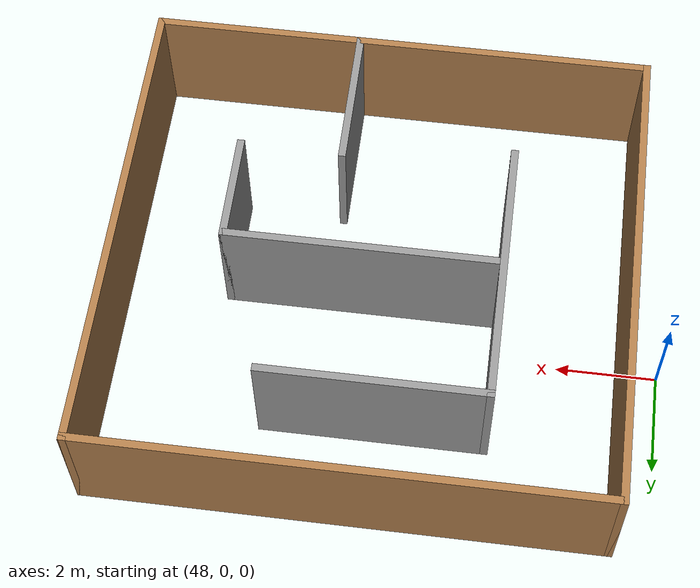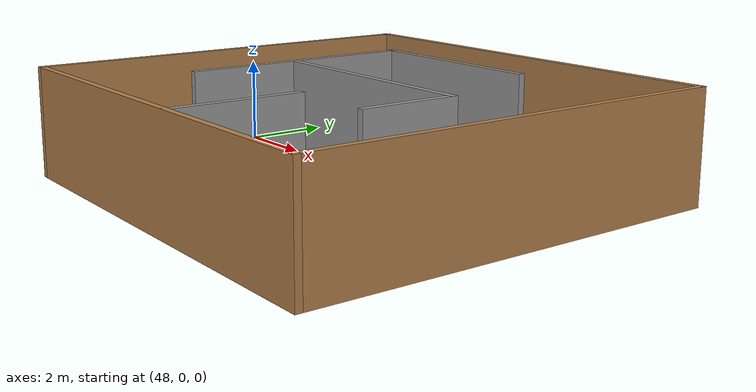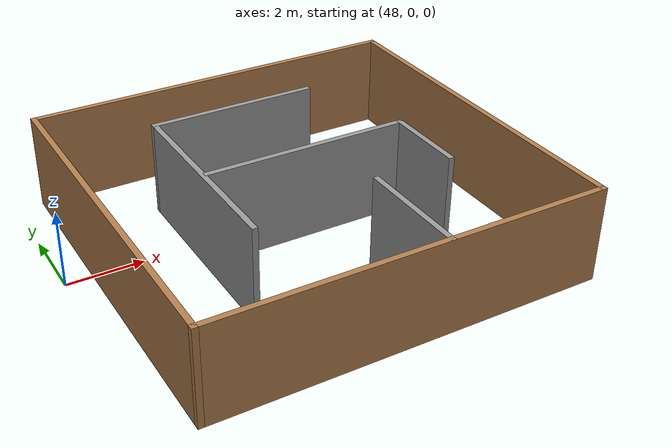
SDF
<?xml version="1.0" ?>
<!--DOESN'T WORK WITH GAZEBO FORTRESS, FOR THIS WORLD USE GAZEBO GARDEN-->
<sdf version="1.8">
  <world name="leo_marsyard">
    <physics name='default_physics' default='0' type='ode'>
      <max_step_size>0.001</max_step_size>
      <real_time_factor>1</real_time_factor>
      <real_time_update_rate>1000</real_time_update_rate>
    </physics>
    <scene>
      <ambient>1 1 1 1</ambient>
      <background>1 1 1 1</background>
      <shadows>0</shadows>
    </scene>
    <spherical_coordinates>
      <surface_model>EARTH_WGS84</surface_model>
      <latitude_deg>43.5655</latitude_deg>
      <longitude_deg>1.4740</longitude_deg>
      <elevation>150</elevation>
      <heading_deg>180</heading_deg>
    </spherical_coordinates>
    <gravity>0 0 -9.8</gravity>
    <magnetic_field>6e-06 2.3e-05 -4.2e-05</magnetic_field>
    <atmosphere type='adiabatic'/>
    <audio>
      <device>default</device>
    </audio>
    <wind/>

    <plugin
      filename="ignition-gazebo-physics-system"
      name="gz::sim::systems::Physics">
    </plugin>
    <plugin
      filename="gz-sim-sensors-system"
      name="gz::sim::systems::Sensors">
      <render_engine>ogre2</render_engine>
    </plugin>
    <plugin
      filename="gz-sim-imu-system"
      name="gz::sim::systems::Imu">
      <render_engine>ogre2</render_engine>
    </plugin>
    <plugin
      filename="gz-sim-scene-broadcaster-system"
      name="gz::sim::systems::SceneBroadcaster">
    </plugin>
    <plugin
      filename="gz-sim-user-commands-system"
      name="gz::sim::systems::UserCommands">
    </plugin>

    <gui fullscreen='false'>
      <plugin name='3D View' filename='GzScene3D'>
        <ignition-gui>
          <title>3D View</title>
          <property type='bool' key='showTitleBar'>false</property>
          <property type='string' key='state'>docked</property>
        </ignition-gui>
        <engine>ogre2</engine>
        <scene>scene</scene>
        <camera_follow>
          <target>leo_rover</target>
          <p_gain>0.5</p_gain>
          <offset>100 100 100</offset>
        </camera_follow>
      </plugin>
      <plugin name='World control' filename='WorldControl'>
        <ignition-gui>
          <title>World control</title>
          <property type='bool' key='showTitleBar'>false</property>
          <property type='bool' key='resizable'>false</property>
          <property type='double' key='height'>72</property>
          <property type='double' key='width'>121</property>
          <property type='double' key='z'>1</property>
          <property type='string' key='state'>floating</property>
          <anchors target='3D View'>
            <line own='left' target='left'/>
            <line own='bottom' target='bottom'/>
          </anchors>
        </ignition-gui>
        <play_pause>true</play_pause>
        <step>true</step>
        <start_paused>true</start_paused>
      </plugin>
      <plugin name='World stats' filename='WorldStats'>
        <ignition-gui>
          <title>World stats</title>
          <property type='bool' key='showTitleBar'>false</property>
          <property type='bool' key='resizable'>false</property>
          <property type='double' key='height'>110</property>
          <property type='double' key='width'>290</property>
          <property type='double' key='z'>1</property>
          <property type='string' key='state'>floating</property>
          <anchors target='3D View'>
            <line own='right' target='right'/>
            <line own='bottom' target='bottom'/>
          </anchors>
        </ignition-gui>
        <sim_time>true</sim_time>
        <real_time>true</real_time>
        <real_time_factor>true</real_time_factor>
        <iterations>true</iterations>
      </plugin>
      <plugin name='Teleop' filename='Teleop'>
        <ignition-gui>
          <property type='string' key='state'>docked</property>
        </ignition-gui>
        <topic>robot_0/cmd_vel_nav</topic>
      </plugin>
    </gui>

    <light name="sun" type="directional">
      <cast_shadows>true</cast_shadows>
      <pose>0 0 10 0 0 0</pose>
      <diffuse>0.8 0.8 0.8 1</diffuse>
      <specular>0.2 0.2 0.2 1</specular>
      <attenuation>
        <range>1000</range>
        <constant>0.9</constant>
        <linear>0.01</linear>
        <quadratic>0.001</quadratic>
      </attenuation>
      <direction>-0.5 0.1 -0.9</direction>
    </light>

    <model name="indoor">
      <pose frame=''>50 0 0 0 0 0</pose>
      <include>
        <uri>model://sun</uri>
      </include>
      <include>
        <uri>model://indoor</uri>
      </include>
    </model>

  </world>
</sdf>

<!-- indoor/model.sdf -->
<sdf version='1.7'>
  <model name='indoor'>
    <pose>3.80687 -1.03904 0 0 -0 0</pose>
    <link name='Wall_11'>
      <collision name='Wall_11_Collision'>
        <geometry>
          <box>
            <size>9.75 0.15 2.5</size>
          </box>
        </geometry>
        <pose>0 0 1.25 0 -0 0</pose>
      </collision>
      <visual name='Wall_11_Visual'>
        <pose>0 0 1.25 0 -0 0</pose>
        <geometry>
          <box>
            <size>9.75 0.15 2.5</size>
          </box>
        </geometry>
        <material>
          <script>
            <uri>file://media/materials/scripts/gazebo.material</uri>
            <name>Gazebo/Wood</name>
          </script>
          <ambient>1 1 1 1</ambient>
        </material>
        <meta>
          <layer>0</layer>
        </meta>
      </visual>
      <pose>-5.05 0 0 0 -0 1.5708</pose>
    </link>
    <link name='Wall_12'>
      <collision name='Wall_12_Collision'>
        <geometry>
          <box>
            <size>10.25 0.15 2.5</size>
          </box>
        </geometry>
        <pose>0 0 1.25 0 -0 0</pose>
      </collision>
      <visual name='Wall_12_Visual'>
        <pose>0 0 1.25 0 -0 0</pose>
        <geometry>
          <box>
            <size>10.25 0.15 2.5</size>
          </box>
        </geometry>
        <material>
          <script>
            <uri>file://media/materials/scripts/gazebo.material</uri>
            <name>Gazebo/Wood</name>
          </script>
          <ambient>1 1 1 1</ambient>
        </material>
        <meta>
          <layer>0</layer>
        </meta>
      </visual>
      <pose>0 4.8 0 0 -0 0</pose>
    </link>
    <link name='Wall_13'>
      <collision name='Wall_13_Collision'>
        <geometry>
          <box>
            <size>9.75 0.15 2.5</size>
          </box>
        </geometry>
        <pose>0 0 1.25 0 -0 0</pose>
      </collision>
      <visual name='Wall_13_Visual'>
        <pose>0 0 1.25 0 -0 0</pose>
        <geometry>
          <box>
            <size>9.75 0.15 2.5</size>
          </box>
        </geometry>
        <material>
          <script>
            <uri>file://media/materials/scripts/gazebo.material</uri>
            <name>Gazebo/Wood</name>
          </script>
          <ambient>1 1 1 1</ambient>
        </material>
        <meta>
          <layer>0</layer>
        </meta>
      </visual>
      <pose>5.05 0 0 0 -0 -1.5708</pose>
    </link>
    <link name='Wall_14'>
      <collision name='Wall_14_Collision'>
        <geometry>
          <box>
            <size>10.25 0.15 2.5</size>
          </box>
        </geometry>
        <pose>0 0 1.25 0 -0 0</pose>
      </collision>
      <visual name='Wall_14_Visual'>
        <pose>0 0 1.25 0 -0 0</pose>
        <geometry>
          <box>
            <size>10.25 0.15 2.5</size>
          </box>
        </geometry>
        <material>
          <script>
            <uri>file://media/materials/scripts/gazebo.material</uri>
            <name>Gazebo/Wood</name>
          </script>
          <ambient>1 1 1 1</ambient>
        </material>
        <meta>
          <layer>0</layer>
        </meta>
      </visual>
      <pose>0 -4.8 0 0 -0 3.14159</pose>
    </link>
    <link name='Wall_16'>
      <collision name='Wall_16_Collision'>
        <geometry>
          <box>
            <size>5.5 0.15 2.5</size>
          </box>
        </geometry>
        <pose>0 0 1.25 0 -0 0</pose>
      </collision>
      <visual name='Wall_16_Visual'>
        <pose>0 0 1.25 0 -0 0</pose>
        <geometry>
          <box>
            <size>5.5 0.15 2.5</size>
          </box>
        </geometry>
        <material>
          <script>
            <uri>file://media/materials/scripts/gazebo.material</uri>
            <name>Gazebo/Grey</name>
          </script>
          <ambient>1 1 1 1</ambient>
        </material>
        <meta>
          <layer>0</layer>
        </meta>
      </visual>
      <pose>-2.53114 0.319143 0 0 -0 -1.5708</pose>
    </link>
    <link name='Wall_18'>
      <collision name='Wall_18_Collision'>
        <geometry>
          <box>
            <size>5.5 0.15 2.5</size>
          </box>
        </geometry>
        <pose>0 0 1.25 0 -0 0</pose>
      </collision>
      <visual name='Wall_18_Visual'>
        <pose>0 0 1.25 0 -0 0</pose>
        <geometry>
          <box>
            <size>5.5 0.15 2.5</size>
          </box>
        </geometry>
        <material>
          <script>
            <uri>file://media/materials/scripts/gazebo.material</uri>
            <name>Gazebo/Grey</name>
          </script>
          <ambient>1 1 1 1</ambient>
        </material>
        <meta>
          <layer>0</layer>
        </meta>
      </visual>
      <pose>0.236436 0.163993 0 0 -0 0</pose>
    </link>
    <link name='Wall_21'>
      <collision name='Wall_21_Collision'>
        <geometry>
          <box>
            <size>3 0.15 2.5</size>
          </box>
        </geometry>
        <pose>0 0 1.25 0 -0 0</pose>
      </collision>
      <visual name='Wall_21_Visual'>
        <pose>0 0 1.25 0 -0 0</pose>
        <geometry>
          <box>
            <size>3 0.15 2.5</size>
          </box>
        </geometry>
        <material>
          <script>
            <uri>file://media/materials/scripts/gazebo.material</uri>
            <name>Gazebo/Grey</name>
          </script>
          <ambient>1 1 1 1</ambient>
        </material>
        <meta>
          <layer>0</layer>
        </meta>
      </visual>
      <pose>0.867686 -3.37038 0 0 -0 1.5708</pose>
    </link>
    <link name='Wall_25'>
      <collision name='Wall_25_Collision'>
        <geometry>
          <box>
            <size>2.25 0.15 2.5</size>
          </box>
        </geometry>
        <pose>0 0 1.25 0 -0 0</pose>
      </collision>
      <visual name='Wall_25_Visual'>
        <pose>0 0 1.25 0 -0 0</pose>
        <geometry>
          <box>
            <size>2.25 0.15 2.5</size>
          </box>
        </geometry>
        <material>
          <script>
            <uri>file://media/materials/scripts/gazebo.material</uri>
            <name>Gazebo/Grey</name>
          </script>
          <ambient>1 1 1 1</ambient>
        </material>
        <meta>
          <layer>0</layer>
        </meta>
      </visual>
      <pose>2.91144 -0.886007 0 0 -0 -1.5708</pose>
    </link>
    <link name='Wall_27'>
      <collision name='Wall_27_Collision'>
        <geometry>
          <box>
            <size>4.5 0.15 2.5</size>
          </box>
        </geometry>
        <pose>0 0 1.25 0 -0 0</pose>
      </collision>
      <visual name='Wall_27_Visual'>
        <pose>0 0 1.25 0 -0 0</pose>
        <geometry>
          <box>
            <size>4.5 0.15 2.5</size>
          </box>
        </geometry>
        <material>
          <script>
            <uri>file://media/materials/scripts/gazebo.material</uri>
            <name>Gazebo/Grey</name>
          </script>
          <ambient>1 1 1 1</ambient>
        </material>
        <meta>
          <layer>0</layer>
        </meta>
      </visual>
      <pose>-0.356139 2.99414 0 0 -0 0</pose>
    </link>
    <static>1</static>
  </model>
</sdf>
